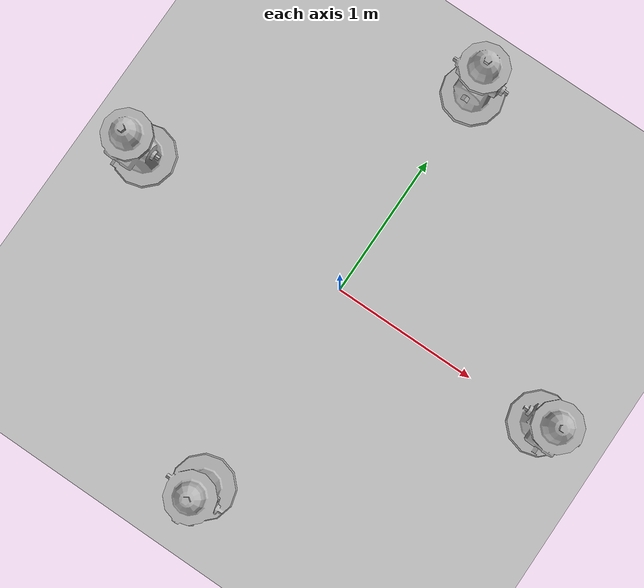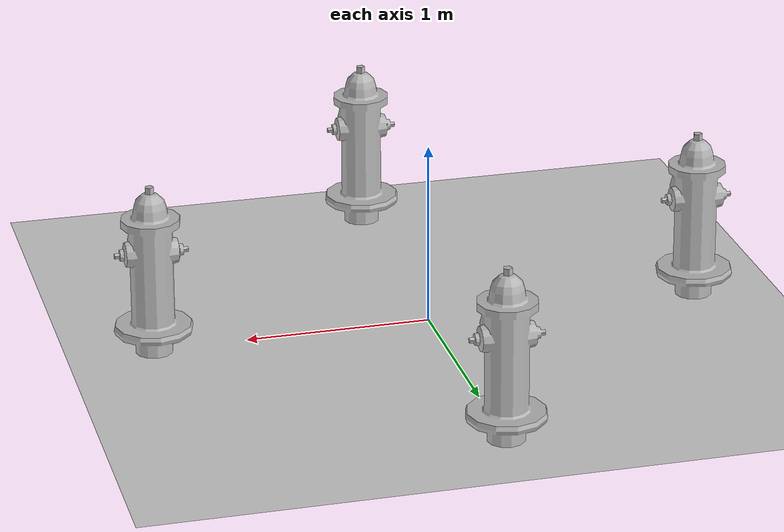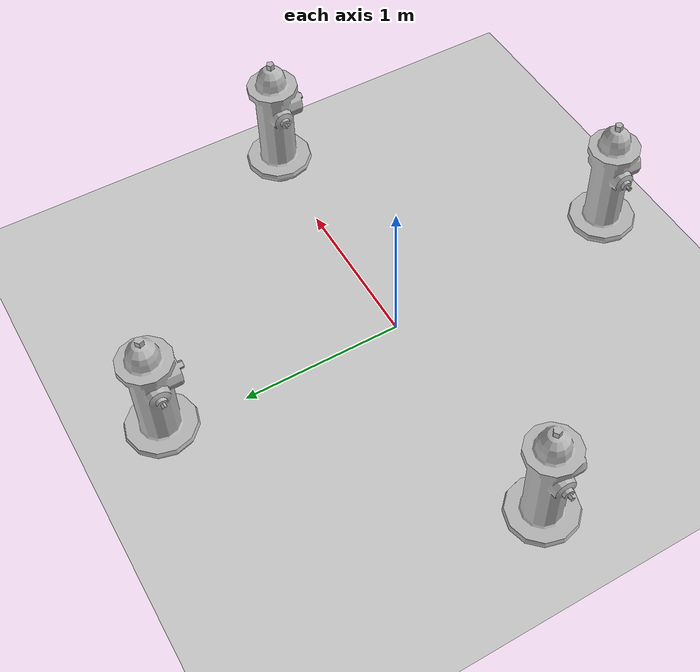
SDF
<?xml version="1.0" ?>
<sdf version="1.4">
  <world name="default">
    <!-- A global light source -->
    <include>
      <uri>model://sun</uri>
    </include>
    <!-- A ground plane -->
    <include>
      <uri>model://ground_plane</uri>
    </include>
    <!-- Own physics settings to speed up simulation -->
    <physics type='ode'>
      <max_step_size>0.01</max_step_size>
      <real_time_factor>1</real_time_factor>
      <real_time_update_rate>100</real_time_update_rate>
      <gravity>0 0 -9.8</gravity>
    </physics>

    <model name='fire_hydrant_0'>
      <static>1</static>
      <link name='link'>
        <collision name='collision'>
          <geometry>
            <mesh>
              <uri>model://fire_hydrant/meshes/fire_hydrant.dae</uri>
            </mesh>
          </geometry>
          <max_contacts>10</max_contacts>
          <surface>
            <bounce/>
            <friction>
              <ode/>
            </friction>
            <contact>
              <ode/>
            </contact>
          </surface>
        </collision>
        <visual name='visual'>
          <geometry>
            <mesh>
              <uri>model://fire_hydrant/meshes/fire_hydrant.dae</uri>
            </mesh>
          </geometry>
        </visual>
        <velocity_decay>
          <linear>0</linear>
          <angular>0</angular>
        </velocity_decay>
        <self_collide>0</self_collide>
        <kinematic>0</kinematic>
        <gravity>1</gravity>
      </link>
      <pose>1.5 0 0 0 -0 0</pose>
    </model>
    <model name='fire_hydrant_1'>
      <static>1</static>
      <link name='link'>
        <collision name='collision'>
          <geometry>
            <mesh>
              <uri>model://fire_hydrant/meshes/fire_hydrant.dae</uri>
            </mesh>
          </geometry>
          <max_contacts>10</max_contacts>
          <surface>
            <bounce/>
            <friction>
              <ode/>
            </friction>
            <contact>
              <ode/>
            </contact>
          </surface>
        </collision>
        <visual name='visual'>
          <geometry>
            <mesh>
              <uri>model://fire_hydrant/meshes/fire_hydrant.dae</uri>
            </mesh>
          </geometry>
        </visual>
        <velocity_decay>
          <linear>0</linear>
          <angular>0</angular>
        </velocity_decay>
        <self_collide>0</self_collide>
        <kinematic>0</kinematic>
        <gravity>1</gravity>
      </link>
      <pose>-1.5 0 0 0 -0 0</pose>
    </model><model name='fire_hydrant_2'>
      <static>1</static>
      <link name='link'>
        <collision name='collision'>
          <geometry>
            <mesh>
              <uri>model://fire_hydrant/meshes/fire_hydrant.dae</uri>
            </mesh>
          </geometry>
          <max_contacts>10</max_contacts>
          <surface>
            <bounce/>
            <friction>
              <ode/>
            </friction>
            <contact>
              <ode/>
            </contact>
          </surface>
        </collision>
        <visual name='visual'>
          <geometry>
            <mesh>
              <uri>model://fire_hydrant/meshes/fire_hydrant.dae</uri>
            </mesh>
          </geometry>
        </visual>
        <velocity_decay>
          <linear>0</linear>
          <angular>0</angular>
        </velocity_decay>
        <self_collide>0</self_collide>
        <kinematic>0</kinematic>
        <gravity>1</gravity>
      </link>
      <pose>0 1.5 0 0 -0 0</pose>
    </model><model name='fire_hydrant_3'>
      <static>1</static>
      <link name='link'>
        <collision name='collision'>
          <geometry>
            <mesh>
              <uri>model://fire_hydrant/meshes/fire_hydrant.dae</uri>
            </mesh>
          </geometry>
          <max_contacts>10</max_contacts>
          <surface>
            <bounce/>
            <friction>
              <ode/>
            </friction>
            <contact>
              <ode/>
            </contact>
          </surface>
        </collision>
        <visual name='visual'>
          <geometry>
            <mesh>
              <uri>model://fire_hydrant/meshes/fire_hydrant.dae</uri>
            </mesh>
          </geometry>
        </visual>
        <velocity_decay>
          <linear>0</linear>
          <angular>0</angular>
        </velocity_decay>
        <self_collide>0</self_collide>
        <kinematic>0</kinematic>
        <gravity>1</gravity>
      </link>
      <pose>0 -1.5 0 0 -0 0</pose>
    </model>

  </world>
</sdf>
